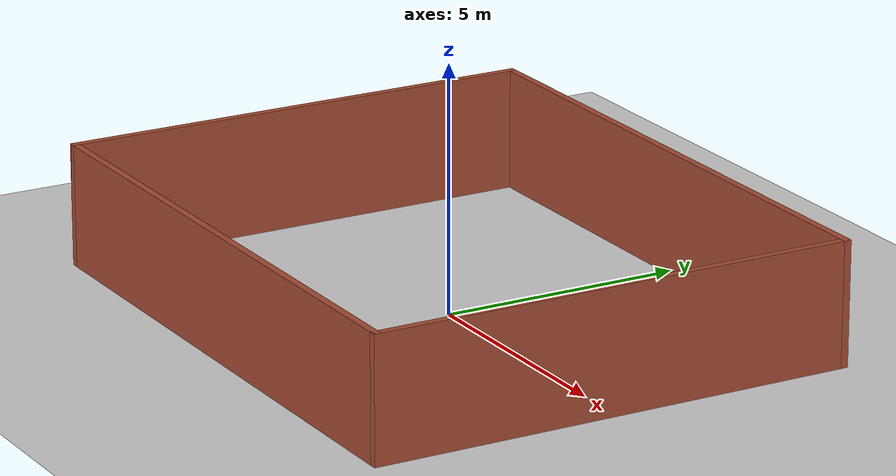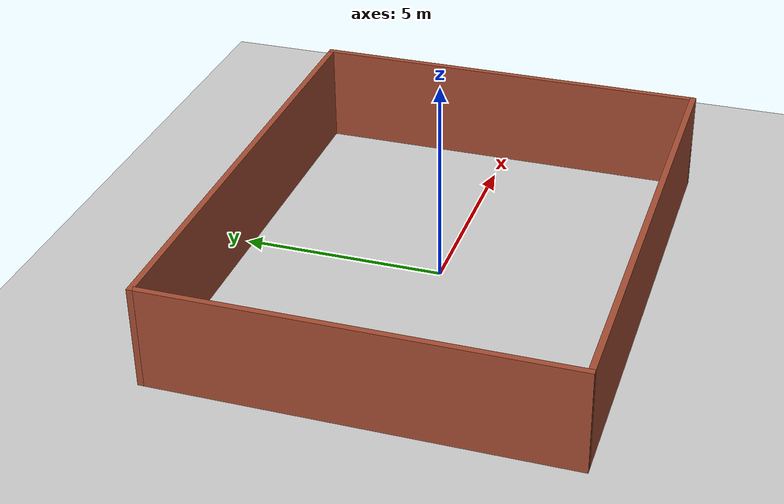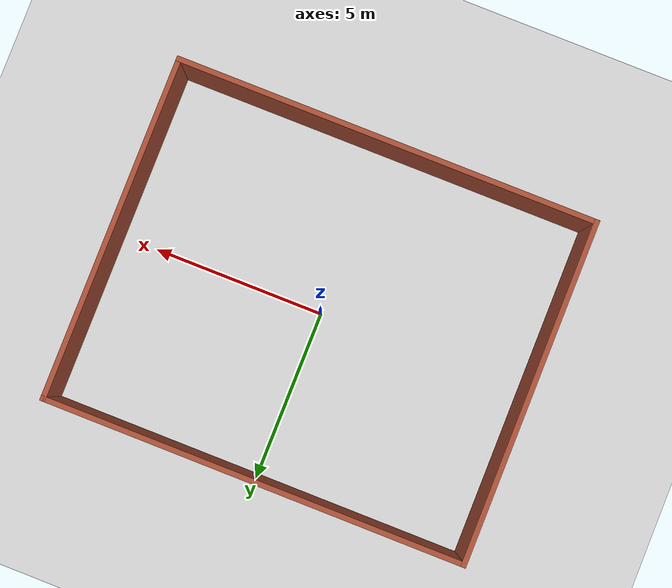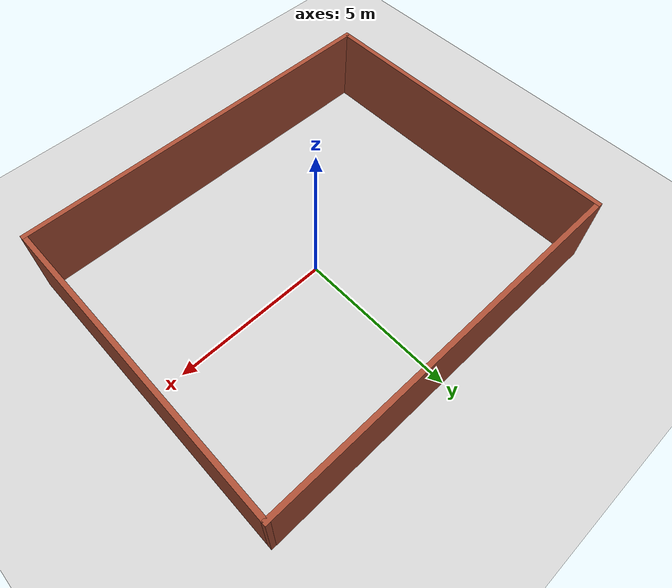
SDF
<?xml version='1.0' encoding='utf-8'?>
<sdf version="1.6">
  <world name="world">
    <gravity>0 0 -9.8</gravity>
    <physics default="0" name="default_physics" type="ode">
      <max_step_size>0.001</max_step_size>
      <real_time_factor>1</real_time_factor>
      <real_time_update_rate>1000</real_time_update_rate>
    </physics>
    <scene>
      <ambient>0.6 0.6 0.6 1</ambient>
      <background>0.4 0.4 0.4 1</background>
      <shadows>false</shadows>
    </scene>
    <include>
      <uri>model://sun</uri>
    </include>
    <include>
      <uri>model://ground_plane</uri>
      <pose>0 0 -0.1 0 -0 0</pose>
    </include>
    <model name="softserve_square">
      <include>
        <uri>model://softserve_square</uri>
        <static>true</static>
        <pose>0 0 0 0 0 0</pose>
      </include>
    </model>
  </world>
</sdf>

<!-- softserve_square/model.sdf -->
<sdf version='1.6'>
  <model name='softserve_square'>
    <pose frame=''>-0.607544 0.509212 0 0 -0 0</pose>
    <link name='Wall_5'>
      <collision name='Wall_5_Collision'>
        <geometry>
          <box>
            <size>10 0.15 2.5</size>
          </box>
        </geometry>
        <pose frame=''>0 0 1.25 0 -0 0</pose>
      </collision>
      <visual name='Wall_5_Visual'>
        <pose frame=''>0 0 1.25 0 -0 0</pose>
        <geometry>
          <box>
            <size>10 0.15 2.5</size>
          </box>
        </geometry>
        <material>
          <script>
            <uri>file://media/materials/scripts/gazebo.material</uri>
            <name>Gazebo/Bricks</name>
          </script>
          <ambient>1 1 1 1</ambient>
        </material>
        <meta>
          <layer>0</layer>
        </meta>
      </visual>
      <pose frame=''>-6.05 0 0 0 -0 -1.5708</pose>
    </link>
    <link name='Wall_6'>
      <collision name='Wall_6_Collision'>
        <geometry>
          <box>
            <size>12.25 0.15 2.5</size>
          </box>
        </geometry>
        <pose frame=''>0 0 1.25 0 -0 0</pose>
      </collision>
      <visual name='Wall_6_Visual'>
        <pose frame=''>0 0 1.25 0 -0 0</pose>
        <geometry>
          <box>
            <size>12.25 0.15 2.5</size>
          </box>
        </geometry>
        <material>
          <script>
            <uri>file://media/materials/scripts/gazebo.material</uri>
            <name>Gazebo/Bricks</name>
          </script>
          <ambient>1 1 1 1</ambient>
        </material>
        <meta>
          <layer>0</layer>
        </meta>
      </visual>
      <pose frame=''>-0 -4.925 0 0 -0 0</pose>
    </link>
    <link name='Wall_7'>
      <collision name='Wall_7_Collision'>
        <geometry>
          <box>
            <size>10 0.15 2.5</size>
          </box>
        </geometry>
        <pose frame=''>0 0 1.25 0 -0 0</pose>
      </collision>
      <visual name='Wall_7_Visual'>
        <pose frame=''>0 0 1.25 0 -0 0</pose>
        <geometry>
          <box>
            <size>10 0.15 2.5</size>
          </box>
        </geometry>
        <material>
          <script>
            <uri>file://media/materials/scripts/gazebo.material</uri>
            <name>Gazebo/Bricks</name>
          </script>
          <ambient>1 1 1 1</ambient>
        </material>
        <meta>
          <layer>0</layer>
        </meta>
      </visual>
      <pose frame=''>6.05 0 0 0 -0 1.5708</pose>
    </link>
    <link name='Wall_8'>
      <collision name='Wall_8_Collision'>
        <geometry>
          <box>
            <size>12.25 0.15 2.5</size>
          </box>
        </geometry>
        <pose frame=''>0 0 1.25 0 -0 0</pose>
      </collision>
      <visual name='Wall_8_Visual'>
        <pose frame=''>0 0 1.25 0 -0 0</pose>
        <geometry>
          <box>
            <size>12.25 0.15 2.5</size>
          </box>
        </geometry>
        <material>
          <script>
            <uri>file://media/materials/scripts/gazebo.material</uri>
            <name>Gazebo/Bricks</name>
          </script>
          <ambient>1 1 1 1</ambient>
        </material>
        <meta>
          <layer>0</layer>
        </meta>
      </visual>
      <pose frame=''>-0 4.925 0 0 -0 3.14159</pose>
    </link>
    <static>1</static>
  </model>
</sdf>
